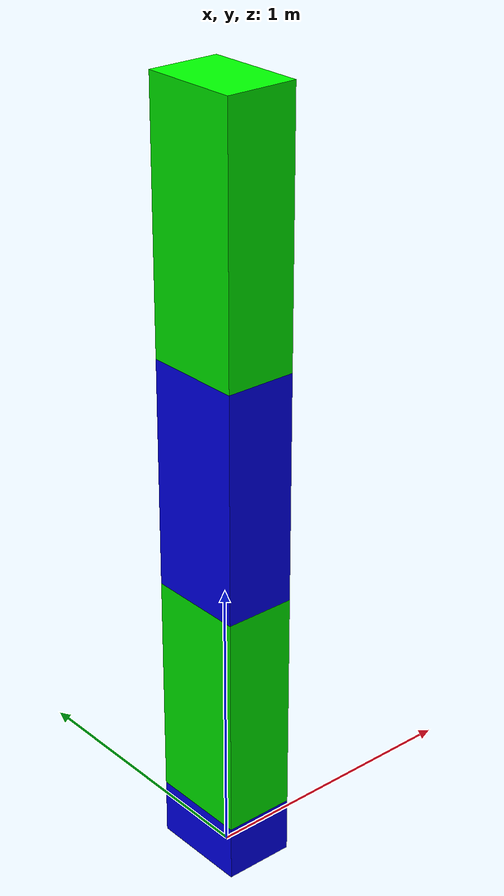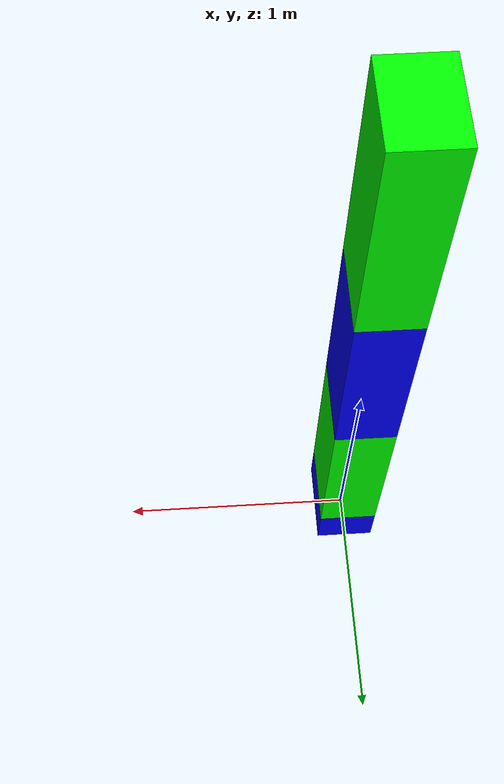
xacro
<?xml version="1.0"?>
<robot xmlns:xacro="http://www.ros.org/wiki/xacro" name="arm">

    <!-- include macros: basic inertia -->
    <xacro:include filename="macros.xacro"/>

    <!-- materials -->
    <material name="red"><color rgba="0 1 0 1"/></material>
    <material name="white"><color rgba="1 1 1 1"/></material>
    <material name="blue"><color rgba="0 0 1 1"/></material>
    <material name="black"><color rgba="0 0 0 1"/></material>

    <!-- base_link -->
    <link name="base_link"/>

    <joint name="base_joint" type="fixed">
        <parent link="base_link"/>
        <child link="bodylink_1"/>
        <origin xyz="0 0 0"/>
    </joint>

    <!-- body link 1st -->
    <link name="bodylink_1">
        <visual>
            <origin xyz="0 0 0.1"/>
            <geometry><box size="0.25 0.35 0.2"/></geometry>
            <material name="blue"/>
        </visual>
        <collision>
            <origin xyz="0 0 0"/>
            <geometry><box size="0.25 0.35 0"/></geometry>
        </collision>
        <xacro:inertial_box mass="0.5" x="0.2" y="0.1" z="0.06">
            <origin xyz="0 0 0.15" rpy="0 0 0"/>
        </xacro:inertial_box>
    </link>

    <!-- body joint 1st -->
    <joint name="bodyjoint_1" type="revolute">
        <parent link="bodylink_1"/>
        <child link="bodylink_2"/>
        <origin xyz="0 0 0.2" rpy="0 0 0"/>
        <axis xyz="0 1 0"/>
        <limit effort="10" lower="-90" upper="90" velocity="5"/>
    </joint>

    <!--body link 2nd-->
    <link name="bodylink_2">
        <visual>
            <origin xyz="0 0 0.4"/>
            <geometry><box size="0.25 0.35 0.8"/></geometry>
            <material name="red"/>
        </visual>
        <collision>
            <origin xyz="0 0 0.4"/>
            <geometry><box size="0.25 0.35 0.55"/></geometry>
        </collision>
        <xacro:inertial_box mass="0.5" x="0.2" y="0.1" z="0.06">
            <origin xyz="0 0 1" rpy="0 0 0"/>
        </xacro:inertial_box>
    </link>

    <!-- body joint 2nd -->
    <joint name="bodyjoint_2" type="revolute">
        <parent link="bodylink_2"/>
        <child link="bodylink_3"/>
        <!--origin xyz="0 0 1" rpy="-${pi/2} 0 0" /-->
        <origin xyz="0 0 0.8" rpy="0 0 0" />
        <axis xyz="0 1 0"/>
        <limit effort="10" lower="-90" upper="90" velocity="5"/>
    </joint>

    <!--body link 3rd-->
    <link name="bodylink_3">
        <visual>
            <origin xyz="0 0 0.4"/>
            <geometry><box size="0.25 0.35 0.8"/></geometry>
            <material name="blue"/>
        </visual>
        <collision>
            <origin xyz="0 0 0.4"/>
            <geometry><box size="0.25 0.35 0.55"/></geometry>
        </collision>
        <xacro:inertial_box mass="0.5" x="0.2" y="0.1" z="0.06">
            <origin xyz="0 0 1" rpy="0 0 0"/>
        </xacro:inertial_box>
    </link>

    <!-- body joint 3rd -->
    <joint name="bodyjoint_3" type="revolute">
        <parent link="bodylink_3"/>
        <child link="bodylink_4"/>
        <origin xyz="0 0 0.8" rpy="0 0 0" />
        <axis xyz="0 1 0"/>
        <limit effort="10" lower="-90" upper="90" velocity="5"/>
    </joint>

    <!--body link 4th-->
    <link name="bodylink_4">
        <visual>
            <origin xyz="0 0 0.45"/>
            <geometry><box size="0.25 0.35 0.9"/></geometry>
            <material name="red"/>
        </visual>
        <collision>
            <origin xyz="0 0 0.45"/>
            <geometry><box size="0.25 0.35 0.65"/></geometry>
        </collision>
        <xacro:inertial_box mass="0.5" x="0.2" y="0.1" z="0.06">
            <origin xyz="0 0 1" rpy="0 0 0"/>
        </xacro:inertial_box>
    </link>

    <!-- include camera xacro (사용자 필요 시) -->

</robot>

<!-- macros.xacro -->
<robot xmlns:xacro="http://www.ros.org/wiki/xacro" > <!-- always include this sentence when using xacro -->

    <!-- Basic inertia declaration with macro -->
    <!-- exporting properties with xacro tag -->

    <!-- 1. sphere -->
    <xacro:macro name="inertial_sphere" params="mass radius *origin">
        <inertial>
            <xacro:insert_block name="origin"/>
            <mass value="${mass}" />
            <inertia ixx="${(2/5) * mass * (radius*radius)}" ixy="0.0" ixz="0.0"
                    iyy="${(2/5) * mass * (radius*radius)}" iyz="0.0"
                    izz="${(2/5) * mass * (radius*radius)}" />
        </inertial>
    </xacro:macro>

    <xacro:macro name="inertial_box" params="mass x y z *origin">
        <inertial>
            <xacro:insert_block name="origin"/>
            <mass value="${mass}" />
            <inertia ixx="${(1/12) * mass * (y*y+z*z)}" ixy="0.0" ixz="0.0"
                    iyy="${(1/12) * mass * (x*x+z*z)}" iyz="0.0"
                    izz="${(1/12) * mass * (x*x+y*y)}" />
        </inertial>
    </xacro:macro>

    <xacro:macro name="inertial_cylinder" params="mass length radius *origin">
        <inertial>
            <xacro:insert_block name="origin"/>
            <mass value="${mass}" />
            <inertia ixx="${(1/12) * mass * (3*radius*radius + length*length)}" ixy="0.0" ixz="0.0"
                    iyy="${(1/12) * mass * (3*radius*radius + length*length)}" iyz="0.0"
                    izz="${(1/2) * mass * (radius*radius)}" />
        </inertial>
    </xacro:macro>

</robot>
